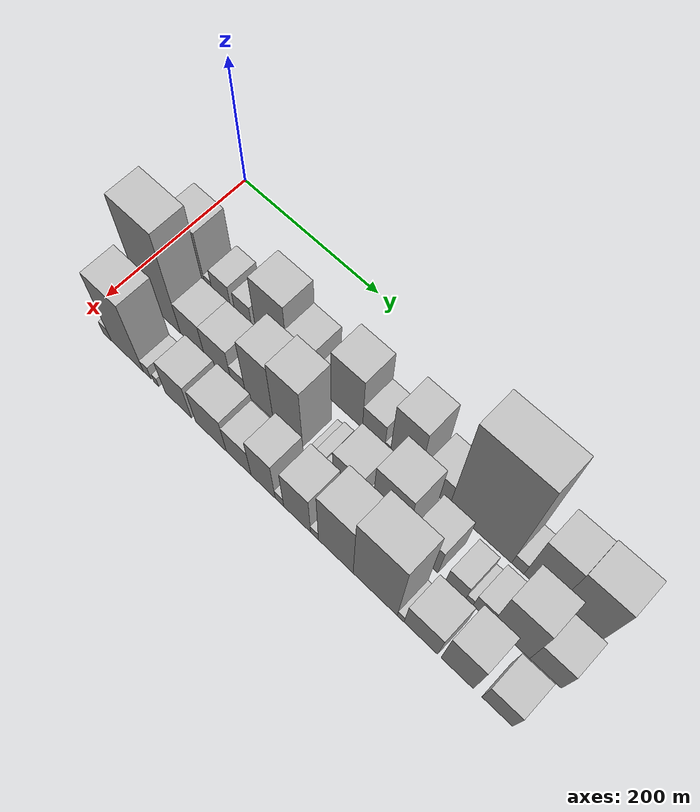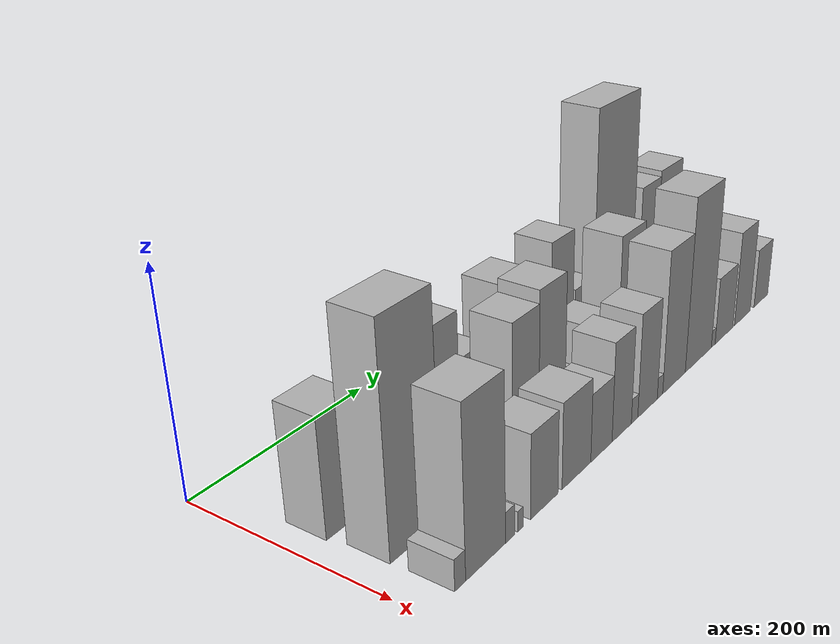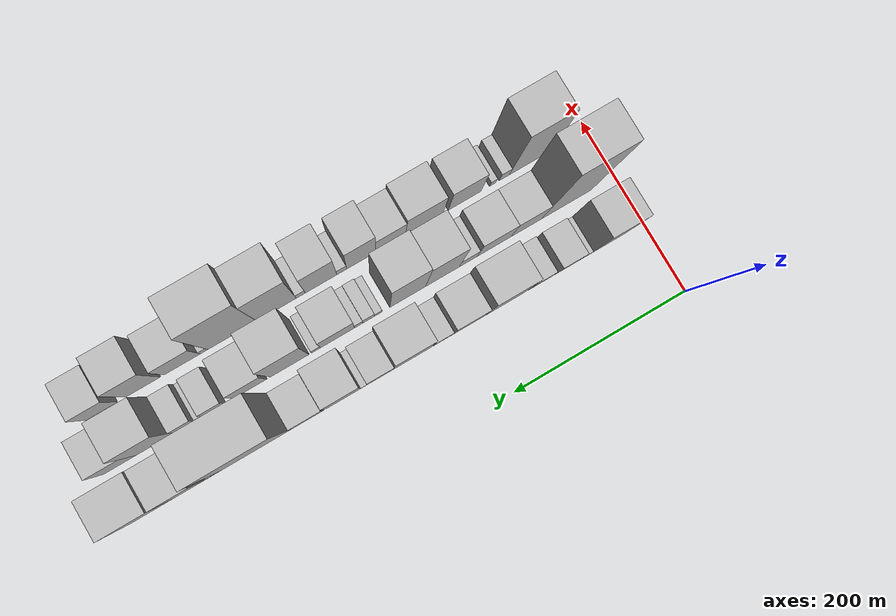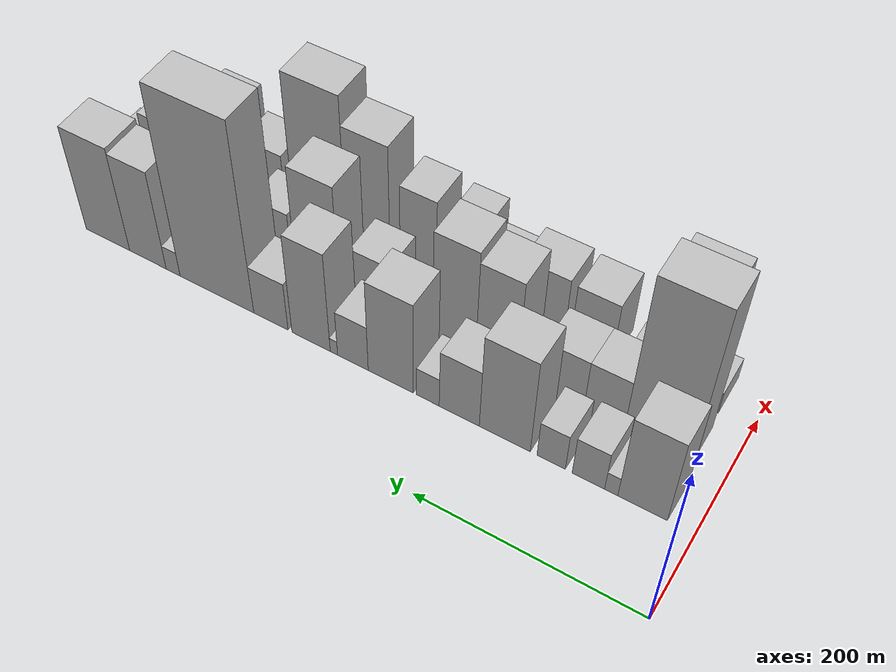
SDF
<sdf version="1.6">
 <world name="default">
  <model name="building_21">
   <static>1</static>
   <pose>100.0000 44.0193 0 0.000000 0.000000 0.000000</pose>
   <link name="link">
    <pose>0 0 52.50 0 0 0</pose>
    <collision name="collision"><geometry><box><size>40.0000 41.6909 105.0000</size></box></geometry></collision>
    <visual name="visual">
     <cast_shadows>0</cast_shadows>
     <geometry><box><size>40.0000 41.6909 105.0000</size></box></geometry>
     <material>
      <script>
       <uri>model://HANNAS_wall/materials/scripts</uri>
       <uri>model://HANNAS_wall/materials/textures</uri>
       <name>vrc/HANNAS_wall</name>
      </script>
     </material>
    </visual>
   </link>
  </model>
  <model name="building_22">
   <static>1</static>
   <pose>100.0000 70.4812 0 0.000000 0.000000 0.000000</pose>
   <link name="link">
    <pose>0 0 12.00 0 0 0</pose>
    <collision name="collision"><geometry><box><size>40.0000 11.2330 24.0000</size></box></geometry></collision>
    <visual name="visual">
     <cast_shadows>0</cast_shadows>
     <geometry><box><size>40.0000 11.2330 24.0000</size></box></geometry>
     <material>
      <script>
       <uri>model://HANNAS_wall/materials/scripts</uri>
       <uri>model://HANNAS_wall/materials/textures</uri>
       <name>vrc/HANNAS_wall</name>
      </script>
     </material>
    </visual>
   </link>
  </model>
  <model name="building_23">
   <static>1</static>
   <pose>100.0000 90.1137 0 0.000000 0.000000 0.000000</pose>
   <link name="link">
    <pose>0 0 24.00 0 0 0</pose>
    <collision name="collision"><geometry><box><size>40.0000 28.0321 48.0000</size></box></geometry></collision>
    <visual name="visual">
     <cast_shadows>0</cast_shadows>
     <geometry><box><size>40.0000 28.0321 48.0000</size></box></geometry>
     <material>
      <script>
       <uri>model://HANNAS_wall/materials/scripts</uri>
       <uri>model://HANNAS_wall/materials/textures</uri>
       <name>vrc/HANNAS_wall</name>
      </script>
     </material>
    </visual>
   </link>
  </model>
  <model name="building_24">
   <static>1</static>
   <pose>100.0000 122.5841 0 0.000000 0.000000 0.000000</pose>
   <link name="link">
    <pose>0 0 22.50 0 0 0</pose>
    <collision name="collision"><geometry><box><size>40.0000 24.9087 45.0000</size></box></geometry></collision>
    <visual name="visual">
     <cast_shadows>0</cast_shadows>
     <geometry><box><size>40.0000 24.9087 45.0000</size></box></geometry>
     <material>
      <script>
       <uri>model://HANNAS_wall/materials/scripts</uri>
       <uri>model://HANNAS_wall/materials/textures</uri>
       <name>vrc/HANNAS_wall</name>
      </script>
     </material>
    </visual>
   </link>
  </model>
  <model name="building_25">
   <static>1</static>
   <pose>100.0000 164.0409 0 0.000000 0.000000 0.000000</pose>
   <link name="link">
    <pose>0 0 58.50 0 0 0</pose>
    <collision name="collision"><geometry><box><size>40.0000 46.0048 117.0000</size></box></geometry></collision>
    <visual name="visual">
     <cast_shadows>0</cast_shadows>
     <geometry><box><size>40.0000 46.0048 117.0000</size></box></geometry>
     <material>
      <script>
       <uri>model://HANNAS_wall/materials/scripts</uri>
       <uri>model://HANNAS_wall/materials/textures</uri>
       <name>vrc/HANNAS_wall</name>
      </script>
     </material>
    </visual>
   </link>
  </model>
  <model name="building_26">
   <static>1</static>
   <pose>100.0000 205.5734 0 0.000000 0.000000 0.000000</pose>
   <link name="link">
    <pose>0 0 36.00 0 0 0</pose>
    <collision name="collision"><geometry><box><size>40.0000 37.0601 72.0000</size></box></geometry></collision>
    <visual name="visual">
     <cast_shadows>0</cast_shadows>
     <geometry><box><size>40.0000 37.0601 72.0000</size></box></geometry>
     <material>
      <script>
       <uri>model://HANNAS_wall/materials/scripts</uri>
       <uri>model://HANNAS_wall/materials/textures</uri>
       <name>vrc/HANNAS_wall</name>
      </script>
     </material>
    </visual>
   </link>
  </model>
  <model name="building_27">
   <static>1</static>
   <pose>100.0000 234.7324 0 0.000000 0.000000 0.000000</pose>
   <link name="link">
    <pose>0 0 18.00 0 0 0</pose>
    <collision name="collision"><geometry><box><size>40.0000 21.2580 36.0000</size></box></geometry></collision>
    <visual name="visual">
     <cast_shadows>0</cast_shadows>
     <geometry><box><size>40.0000 21.2580 36.0000</size></box></geometry>
     <material>
      <script>
       <uri>model://HANNAS_wall/materials/scripts</uri>
       <uri>model://HANNAS_wall/materials/textures</uri>
       <name>vrc/HANNAS_wall</name>
      </script>
     </material>
    </visual>
   </link>
  </model>
  <model name="building_28">
   <static>1</static>
   <pose>100.0000 269.9619 0 0.000000 0.000000 0.000000</pose>
   <link name="link">
    <pose>0 0 57.00 0 0 0</pose>
    <collision name="collision"><geometry><box><size>40.0000 43.2010 114.0000</size></box></geometry></collision>
    <visual name="visual">
     <cast_shadows>0</cast_shadows>
     <geometry><box><size>40.0000 43.2010 114.0000</size></box></geometry>
     <material>
      <script>
       <uri>model://HANNAS_wall/materials/scripts</uri>
       <uri>model://HANNAS_wall/materials/textures</uri>
       <name>vrc/HANNAS_wall</name>
      </script>
     </material>
    </visual>
   </link>
  </model>
  <model name="building_29">
   <static>1</static>
   <pose>100.0000 306.5594 0 0.000000 0.000000 0.000000</pose>
   <link name="link">
    <pose>0 0 28.50 0 0 0</pose>
    <collision name="collision"><geometry><box><size>40.0000 29.9941 57.0000</size></box></geometry></collision>
    <visual name="visual">
     <cast_shadows>0</cast_shadows>
     <geometry><box><size>40.0000 29.9941 57.0000</size></box></geometry>
     <material>
      <script>
       <uri>model://HANNAS_wall/materials/scripts</uri>
       <uri>model://HANNAS_wall/materials/textures</uri>
       <name>vrc/HANNAS_wall</name>
      </script>
     </material>
    </visual>
   </link>
  </model>
  <model name="building_30">
   <static>1</static>
   <pose>100.0000 325.1949 0 0.000000 0.000000 0.000000</pose>
   <link name="link">
    <pose>0 0 9.00 0 0 0</pose>
    <collision name="collision"><geometry><box><size>40.0000 7.2768 18.0000</size></box></geometry></collision>
    <visual name="visual">
     <cast_shadows>0</cast_shadows>
     <geometry><box><size>40.0000 7.2768 18.0000</size></box></geometry>
     <material>
      <script>
       <uri>model://HANNAS_wall/materials/scripts</uri>
       <uri>model://HANNAS_wall/materials/textures</uri>
       <name>vrc/HANNAS_wall</name>
      </script>
     </material>
    </visual>
   </link>
  </model>
  <model name="building_31">
   <static>1</static>
   <pose>100.0000 347.9700 0 0.000000 0.000000 0.000000</pose>
   <link name="link">
    <pose>0 0 61.50 0 0 0</pose>
    <collision name="collision"><geometry><box><size>40.0000 38.2735 123.0000</size></box></geometry></collision>
    <visual name="visual">
     <cast_shadows>0</cast_shadows>
     <geometry><box><size>40.0000 38.2735 123.0000</size></box></geometry>
     <material>
      <script>
       <uri>model://HANNAS_wall/materials/scripts</uri>
       <uri>model://HANNAS_wall/materials/textures</uri>
       <name>vrc/HANNAS_wall</name>
      </script>
     </material>
    </visual>
   </link>
  </model>
  <model name="building_32">
   <static>1</static>
   <pose>100.0000 388.5789 0 0.000000 0.000000 0.000000</pose>
   <link name="link">
    <pose>0 0 30.00 0 0 0</pose>
    <collision name="collision"><geometry><box><size>40.0000 34.9442 60.0000</size></box></geometry></collision>
    <visual name="visual">
     <cast_shadows>0</cast_shadows>
     <geometry><box><size>40.0000 34.9442 60.0000</size></box></geometry>
     <material>
      <script>
       <uri>model://HANNAS_wall/materials/scripts</uri>
       <uri>model://HANNAS_wall/materials/textures</uri>
       <name>vrc/HANNAS_wall</name>
      </script>
     </material>
    </visual>
   </link>
  </model>
  <model name="building_33">
   <static>1</static>
   <pose>100.0000 444.9946 0 0.000000 0.000000 0.000000</pose>
   <link name="link">
    <pose>0 0 112.50 0 0 0</pose>
    <collision name="collision"><geometry><box><size>40.0000 77.8872 225.0000</size></box></geometry></collision>
    <visual name="visual">
     <cast_shadows>0</cast_shadows>
     <geometry><box><size>40.0000 77.8872 225.0000</size></box></geometry>
     <material>
      <script>
       <uri>model://HANNAS_wall/materials/scripts</uri>
       <uri>model://HANNAS_wall/materials/textures</uri>
       <name>vrc/HANNAS_wall</name>
      </script>
     </material>
    </visual>
   </link>
  </model>
  <model name="building_34">
   <static>1</static>
   <pose>100.0000 491.4646 0 0.000000 0.000000 0.000000</pose>
   <link name="link">
    <pose>0 0 15.00 0 0 0</pose>
    <collision name="collision"><geometry><box><size>40.0000 15.0528 30.0000</size></box></geometry></collision>
    <visual name="visual">
     <cast_shadows>0</cast_shadows>
     <geometry><box><size>40.0000 15.0528 30.0000</size></box></geometry>
     <material>
      <script>
       <uri>model://HANNAS_wall/materials/scripts</uri>
       <uri>model://HANNAS_wall/materials/textures</uri>
       <name>vrc/HANNAS_wall</name>
      </script>
     </material>
    </visual>
   </link>
  </model>
  <model name="building_35">
   <static>1</static>
   <pose>100.0000 518.9559 0 0.000000 0.000000 0.000000</pose>
   <link name="link">
    <pose>0 0 60.00 0 0 0</pose>
    <collision name="collision"><geometry><box><size>40.0000 39.9298 120.0000</size></box></geometry></collision>
    <visual name="visual">
     <cast_shadows>0</cast_shadows>
     <geometry><box><size>40.0000 39.9298 120.0000</size></box></geometry>
     <material>
      <script>
       <uri>model://HANNAS_wall/materials/scripts</uri>
       <uri>model://HANNAS_wall/materials/textures</uri>
       <name>vrc/HANNAS_wall</name>
      </script>
     </material>
    </visual>
   </link>
  </model>
  <model name="building_36">
   <static>1</static>
   <pose>100.0000 563.3498 0 0.000000 0.000000 0.000000</pose>
   <link name="link">
    <pose>0 0 63.00 0 0 0</pose>
    <collision name="collision"><geometry><box><size>40.0000 48.8581 126.0000</size></box></geometry></collision>
    <visual name="visual">
     <cast_shadows>0</cast_shadows>
     <geometry><box><size>40.0000 48.8581 126.0000</size></box></geometry>
     <material>
      <script>
       <uri>model://HANNAS_wall/materials/scripts</uri>
       <uri>model://HANNAS_wall/materials/textures</uri>
       <name>vrc/HANNAS_wall</name>
      </script>
     </material>
    </visual>
   </link>
  </model>
  <model name="building_50">
   <static>1</static>
   <pose>155.0000 57.4615 0 0.000000 0.000000 0.000000</pose>
   <link name="link">
    <pose>0 0 97.50 0 0 0</pose>
    <collision name="collision"><geometry><box><size>40.0000 58.5223 195.0000</size></box></geometry></collision>
    <visual name="visual">
     <cast_shadows>0</cast_shadows>
     <geometry><box><size>40.0000 58.5223 195.0000</size></box></geometry>
     <material>
      <script>
       <uri>model://HANNAS_wall/materials/scripts</uri>
       <uri>model://HANNAS_wall/materials/textures</uri>
       <name>vrc/HANNAS_wall</name>
      </script>
     </material>
    </visual>
   </link>
  </model>
  <model name="building_51">
   <static>1</static>
   <pose>155.0000 104.7259 0 0.000000 0.000000 0.000000</pose>
   <link name="link">
    <pose>0 0 33.00 0 0 0</pose>
    <collision name="collision"><geometry><box><size>40.0000 36.0065 66.0000</size></box></geometry></collision>
    <visual name="visual">
     <cast_shadows>0</cast_shadows>
     <geometry><box><size>40.0000 36.0065 66.0000</size></box></geometry>
     <material>
      <script>
       <uri>model://HANNAS_wall/materials/scripts</uri>
       <uri>model://HANNAS_wall/materials/textures</uri>
       <name>vrc/HANNAS_wall</name>
      </script>
     </material>
    </visual>
   </link>
  </model>
  <model name="building_52">
   <static>1</static>
   <pose>155.0000 142.3442 0 0.000000 0.000000 0.000000</pose>
   <link name="link">
    <pose>0 0 33.00 0 0 0</pose>
    <collision name="collision"><geometry><box><size>40.0000 39.2301 66.0000</size></box></geometry></collision>
    <visual name="visual">
     <cast_shadows>0</cast_shadows>
     <geometry><box><size>40.0000 39.2301 66.0000</size></box></geometry>
     <material>
      <script>
       <uri>model://HANNAS_wall/materials/scripts</uri>
       <uri>model://HANNAS_wall/materials/textures</uri>
       <name>vrc/HANNAS_wall</name>
      </script>
     </material>
    </visual>
   </link>
  </model>
  <model name="building_53">
   <static>1</static>
   <pose>155.0000 172.5488 0 0.000000 0.000000 0.000000</pose>
   <link name="link">
    <pose>0 0 18.00 0 0 0</pose>
    <collision name="collision"><geometry><box><size>40.0000 21.1791 36.0000</size></box></geometry></collision>
    <visual name="visual">
     <cast_shadows>0</cast_shadows>
     <geometry><box><size>40.0000 21.1791 36.0000</size></box></geometry>
     <material>
      <script>
       <uri>model://HANNAS_wall/materials/scripts</uri>
       <uri>model://HANNAS_wall/materials/textures</uri>
       <name>vrc/HANNAS_wall</name>
      </script>
     </material>
    </visual>
   </link>
  </model>
  <model name="building_54">
   <static>1</static>
   <pose>155.0000 202.6950 0 0.000000 0.000000 0.000000</pose>
   <link name="link">
    <pose>0 0 61.50 0 0 0</pose>
    <collision name="collision"><geometry><box><size>40.0000 39.1133 123.0000</size></box></geometry></collision>
    <visual name="visual">
     <cast_shadows>0</cast_shadows>
     <geometry><box><size>40.0000 39.1133 123.0000</size></box></geometry>
     <material>
      <script>
       <uri>model://HANNAS_wall/materials/scripts</uri>
       <uri>model://HANNAS_wall/materials/textures</uri>
       <name>vrc/HANNAS_wall</name>
      </script>
     </material>
    </visual>
   </link>
  </model>
  <model name="building_55">
   <static>1</static>
   <pose>155.0000 242.8313 0 0.000000 0.000000 0.000000</pose>
   <link name="link">
    <pose>0 0 67.50 0 0 0</pose>
    <collision name="collision"><geometry><box><size>40.0000 41.1593 135.0000</size></box></geometry></collision>
    <visual name="visual">
     <cast_shadows>0</cast_shadows>
     <geometry><box><size>40.0000 41.1593 135.0000</size></box></geometry>
     <material>
      <script>
       <uri>model://HANNAS_wall/materials/scripts</uri>
       <uri>model://HANNAS_wall/materials/textures</uri>
       <name>vrc/HANNAS_wall</name>
      </script>
     </material>
    </visual>
   </link>
  </model>
  <model name="building_56">
   <static>1</static>
   <pose>155.0000 276.7451 0 0.000000 0.000000 0.000000</pose>
   <link name="link">
    <pose>0 0 9.00 0 0 0</pose>
    <collision name="collision"><geometry><box><size>40.0000 8.6683 18.0000</size></box></geometry></collision>
    <visual name="visual">
     <cast_shadows>0</cast_shadows>
     <geometry><box><size>40.0000 8.6683 18.0000</size></box></geometry>
     <material>
      <script>
       <uri>model://HANNAS_wall/materials/scripts</uri>
       <uri>model://HANNAS_wall/materials/textures</uri>
       <name>vrc/HANNAS_wall</name>
      </script>
     </material>
    </visual>
   </link>
  </model>
  <model name="building_57">
   <static>1</static>
   <pose>155.0000 287.7521 0 0.000000 0.000000 0.000000</pose>
   <link name="link">
    <pose>0 0 13.50 0 0 0</pose>
    <collision name="collision"><geometry><box><size>40.0000 13.3457 27.0000</size></box></geometry></collision>
    <visual name="visual">
     <cast_shadows>0</cast_shadows>
     <geometry><box><size>40.0000 13.3457 27.0000</size></box></geometry>
     <material>
      <script>
       <uri>model://HANNAS_wall/materials/scripts</uri>
       <uri>model://HANNAS_wall/materials/textures</uri>
       <name>vrc/HANNAS_wall</name>
      </script>
     </material>
    </visual>
   </link>
  </model>
  <model name="building_58">
   <static>1</static>
   <pose>155.0000 299.2584 0 0.000000 0.000000 0.000000</pose>
   <link name="link">
    <pose>0 0 12.00 0 0 0</pose>
    <collision name="collision"><geometry><box><size>40.0000 9.6668 24.0000</size></box></geometry></collision>
    <visual name="visual">
     <cast_shadows>0</cast_shadows>
     <geometry><box><size>40.0000 9.6668 24.0000</size></box></geometry>
     <material>
      <script>
       <uri>model://HANNAS_wall/materials/scripts</uri>
       <uri>model://HANNAS_wall/materials/textures</uri>
       <name>vrc/HANNAS_wall</name>
      </script>
     </material>
    </visual>
   </link>
  </model>
  <model name="building_59">
   <static>1</static>
   <pose>155.0000 323.4961 0 0.000000 0.000000 0.000000</pose>
   <link name="link">
    <pose>0 0 33.00 0 0 0</pose>
    <collision name="collision"><geometry><box><size>40.0000 38.8087 66.0000</size></box></geometry></collision>
    <visual name="visual">
     <cast_shadows>0</cast_shadows>
     <geometry><box><size>40.0000 38.8087 66.0000</size></box></geometry>
     <material>
      <script>
       <uri>model://HANNAS_wall/materials/scripts</uri>
       <uri>model://HANNAS_wall/materials/textures</uri>
       <name>vrc/HANNAS_wall</name>
      </script>
     </material>
    </visual>
   </link>
  </model>
  <model name="building_60">
   <static>1</static>
   <pose>155.0000 347.9734 0 0.000000 0.000000 0.000000</pose>
   <link name="link">
    <pose>0 0 10.50 0 0 0</pose>
    <collision name="collision"><geometry><box><size>40.0000 10.1459 21.0000</size></box></geometry></collision>
    <visual name="visual">
     <cast_shadows>0</cast_shadows>
     <geometry><box><size>40.0000 10.1459 21.0000</size></box></geometry>
     <material>
      <script>
       <uri>model://HANNAS_wall/materials/scripts</uri>
       <uri>model://HANNAS_wall/materials/textures</uri>
       <name>vrc/HANNAS_wall</name>
      </script>
     </material>
    </visual>
   </link>
  </model>
  <model name="building_61">
   <static>1</static>
   <pose>155.0000 378.1386 0 0.000000 0.000000 0.000000</pose>
   <link name="link">
    <pose>0 0 66.00 0 0 0</pose>
    <collision name="collision"><geometry><box><size>40.0000 44.1845 132.0000</size></box></geometry></collision>
    <visual name="visual">
     <cast_shadows>0</cast_shadows>
     <geometry><box><size>40.0000 44.1845 132.0000</size></box></geometry>
     <material>
      <script>
       <uri>model://HANNAS_wall/materials/scripts</uri>
       <uri>model://HANNAS_wall/materials/textures</uri>
       <name>vrc/HANNAS_wall</name>
      </script>
     </material>
    </visual>
   </link>
  </model>
  <model name="building_62">
   <static>1</static>
   <pose>155.0000 422.5611 0 0.000000 0.000000 0.000000</pose>
   <link name="link">
    <pose>0 0 36.00 0 0 0</pose>
    <collision name="collision"><geometry><box><size>40.0000 36.6606 72.0000</size></box></geometry></collision>
    <visual name="visual">
     <cast_shadows>0</cast_shadows>
     <geometry><box><size>40.0000 36.6606 72.0000</size></box></geometry>
     <material>
      <script>
       <uri>model://HANNAS_wall/materials/scripts</uri>
       <uri>model://HANNAS_wall/materials/textures</uri>
       <name>vrc/HANNAS_wall</name>
      </script>
     </material>
    </visual>
   </link>
  </model>
  <model name="building_63">
   <static>1</static>
   <pose>155.0000 463.1494 0 0.000000 0.000000 0.000000</pose>
   <link name="link">
    <pose>0 0 21.00 0 0 0</pose>
    <collision name="collision"><geometry><box><size>40.0000 24.5159 42.0000</size></box></geometry></collision>
    <visual name="visual">
     <cast_shadows>0</cast_shadows>
     <geometry><box><size>40.0000 24.5159 42.0000</size></box></geometry>
     <material>
      <script>
       <uri>model://HANNAS_wall/materials/scripts</uri>
       <uri>model://HANNAS_wall/materials/textures</uri>
       <name>vrc/HANNAS_wall</name>
      </script>
     </material>
    </visual>
   </link>
  </model>
  <model name="building_64">
   <static>1</static>
   <pose>155.0000 479.7897 0 0.000000 0.000000 0.000000</pose>
   <link name="link">
    <pose>0 0 9.00 0 0 0</pose>
    <collision name="collision"><geometry><box><size>40.0000 8.7647 18.0000</size></box></geometry></collision>
    <visual name="visual">
     <cast_shadows>0</cast_shadows>
     <geometry><box><size>40.0000 8.7647 18.0000</size></box></geometry>
     <material>
      <script>
       <uri>model://HANNAS_wall/materials/scripts</uri>
       <uri>model://HANNAS_wall/materials/textures</uri>
       <name>vrc/HANNAS_wall</name>
      </script>
     </material>
    </visual>
   </link>
  </model>
  <model name="building_65">
   <static>1</static>
   <pose>155.0000 495.7637 0 0.000000 0.000000 0.000000</pose>
   <link name="link">
    <pose>0 0 21.00 0 0 0</pose>
    <collision name="collision"><geometry><box><size>40.0000 23.1834 42.0000</size></box></geometry></collision>
    <visual name="visual">
     <cast_shadows>0</cast_shadows>
     <geometry><box><size>40.0000 23.1834 42.0000</size></box></geometry>
     <material>
      <script>
       <uri>model://HANNAS_wall/materials/scripts</uri>
       <uri>model://HANNAS_wall/materials/textures</uri>
       <name>vrc/HANNAS_wall</name>
      </script>
     </material>
    </visual>
   </link>
  </model>
  <model name="building_66">
   <static>1</static>
   <pose>155.0000 529.7423 0 0.000000 0.000000 0.000000</pose>
   <link name="link">
    <pose>0 0 57.00 0 0 0</pose>
    <collision name="collision"><geometry><box><size>40.0000 44.7738 114.0000</size></box></geometry></collision>
    <visual name="visual">
     <cast_shadows>0</cast_shadows>
     <geometry><box><size>40.0000 44.7738 114.0000</size></box></geometry>
     <material>
      <script>
       <uri>model://HANNAS_wall/materials/scripts</uri>
       <uri>model://HANNAS_wall/materials/textures</uri>
       <name>vrc/HANNAS_wall</name>
      </script>
     </material>
    </visual>
   </link>
  </model>
  <model name="building_67">
   <static>1</static>
   <pose>155.0000 570.4835 0 0.000000 0.000000 0.000000</pose>
   <link name="link">
    <pose>0 0 34.50 0 0 0</pose>
    <collision name="collision"><geometry><box><size>40.0000 36.7087 69.0000</size></box></geometry></collision>
    <visual name="visual">
     <cast_shadows>0</cast_shadows>
     <geometry><box><size>40.0000 36.7087 69.0000</size></box></geometry>
     <material>
      <script>
       <uri>model://HANNAS_wall/materials/scripts</uri>
       <uri>model://HANNAS_wall/materials/textures</uri>
       <name>vrc/HANNAS_wall</name>
      </script>
     </material>
    </visual>
   </link>
  </model>
  <model name="building_85">
   <static>1</static>
   <pose>210.0000 36.2346 0 0.000000 0.000000 0.000000</pose>
   <link name="link">
    <pose>0 0 13.50 0 0 0</pose>
    <collision name="collision"><geometry><box><size>40.0000 12.7011 27.0000</size></box></geometry></collision>
    <visual name="visual">
     <cast_shadows>0</cast_shadows>
     <geometry><box><size>40.0000 12.7011 27.0000</size></box></geometry>
     <material>
      <script>
       <uri>model://HANNAS_wall/materials/scripts</uri>
       <uri>model://HANNAS_wall/materials/textures</uri>
       <name>vrc/HANNAS_wall</name>
      </script>
     </material>
    </visual>
   </link>
  </model>
  <model name="building_86">
   <static>1</static>
   <pose>210.0000 67.0611 0 0.000000 0.000000 0.000000</pose>
   <link name="link">
    <pose>0 0 72.00 0 0 0</pose>
    <collision name="collision"><geometry><box><size>40.0000 48.9519 144.0000</size></box></geometry></collision>
    <visual name="visual">
     <cast_shadows>0</cast_shadows>
     <geometry><box><size>40.0000 48.9519 144.0000</size></box></geometry>
     <material>
      <script>
       <uri>model://HANNAS_wall/materials/scripts</uri>
       <uri>model://HANNAS_wall/materials/textures</uri>
       <name>vrc/HANNAS_wall</name>
      </script>
     </material>
    </visual>
   </link>
  </model>
  <model name="building_87">
   <static>1</static>
   <pose>210.0000 97.4123 0 0.000000 0.000000 0.000000</pose>
   <link name="link">
    <pose>0 0 13.50 0 0 0</pose>
    <collision name="collision"><geometry><box><size>40.0000 11.7505 27.0000</size></box></geometry></collision>
    <visual name="visual">
     <cast_shadows>0</cast_shadows>
     <geometry><box><size>40.0000 11.7505 27.0000</size></box></geometry>
     <material>
      <script>
       <uri>model://HANNAS_wall/materials/scripts</uri>
       <uri>model://HANNAS_wall/materials/textures</uri>
       <name>vrc/HANNAS_wall</name>
      </script>
     </material>
    </visual>
   </link>
  </model>
  <model name="building_88">
   <static>1</static>
   <pose>210.0000 111.0005 0 0.000000 0.000000 0.000000</pose>
   <link name="link">
    <pose>0 0 9.00 0 0 0</pose>
    <collision name="collision"><geometry><box><size>40.0000 7.4258 18.0000</size></box></geometry></collision>
    <visual name="visual">
     <cast_shadows>0</cast_shadows>
     <geometry><box><size>40.0000 7.4258 18.0000</size></box></geometry>
     <material>
      <script>
       <uri>model://HANNAS_wall/materials/scripts</uri>
       <uri>model://HANNAS_wall/materials/textures</uri>
       <name>vrc/HANNAS_wall</name>
      </script>
     </material>
    </visual>
   </link>
  </model>
  <model name="building_89">
   <static>1</static>
   <pose>210.0000 143.9252 0 0.000000 0.000000 0.000000</pose>
   <link name="link">
    <pose>0 0 37.50 0 0 0</pose>
    <collision name="collision"><geometry><box><size>40.0000 38.4236 75.0000</size></box></geometry></collision>
    <visual name="visual">
     <cast_shadows>0</cast_shadows>
     <geometry><box><size>40.0000 38.4236 75.0000</size></box></geometry>
     <material>
      <script>
       <uri>model://HANNAS_wall/materials/scripts</uri>
       <uri>model://HANNAS_wall/materials/textures</uri>
       <name>vrc/HANNAS_wall</name>
      </script>
     </material>
    </visual>
   </link>
  </model>
  <model name="building_90">
   <static>1</static>
   <pose>210.0000 191.1306 0 0.000000 0.000000 0.000000</pose>
   <link name="link">
    <pose>0 0 39.00 0 0 0</pose>
    <collision name="collision"><geometry><box><size>40.0000 43.9871 78.0000</size></box></geometry></collision>
    <visual name="visual">
     <cast_shadows>0</cast_shadows>
     <geometry><box><size>40.0000 43.9871 78.0000</size></box></geometry>
     <material>
      <script>
       <uri>model://HANNAS_wall/materials/scripts</uri>
       <uri>model://HANNAS_wall/materials/textures</uri>
       <name>vrc/HANNAS_wall</name>
      </script>
     </material>
    </visual>
   </link>
  </model>
  <model name="building_91">
   <static>1</static>
   <pose>210.0000 230.4710 0 0.000000 0.000000 0.000000</pose>
   <link name="link">
    <pose>0 0 31.50 0 0 0</pose>
    <collision name="collision"><geometry><box><size>40.0000 34.6938 63.0000</size></box></geometry></collision>
    <visual name="visual">
     <cast_shadows>0</cast_shadows>
     <geometry><box><size>40.0000 34.6938 63.0000</size></box></geometry>
     <material>
      <script>
       <uri>model://HANNAS_wall/materials/scripts</uri>
       <uri>model://HANNAS_wall/materials/textures</uri>
       <name>vrc/HANNAS_wall</name>
      </script>
     </material>
    </visual>
   </link>
  </model>
  <model name="building_92">
   <static>1</static>
   <pose>210.0000 264.4849 0 0.000000 0.000000 0.000000</pose>
   <link name="link">
    <pose>0 0 46.50 0 0 0</pose>
    <collision name="collision"><geometry><box><size>40.0000 33.3339 93.0000</size></box></geometry></collision>
    <visual name="visual">
     <cast_shadows>0</cast_shadows>
     <geometry><box><size>40.0000 33.3339 93.0000</size></box></geometry>
     <material>
      <script>
       <uri>model://HANNAS_wall/materials/scripts</uri>
       <uri>model://HANNAS_wall/materials/textures</uri>
       <name>vrc/HANNAS_wall</name>
      </script>
     </material>
    </visual>
   </link>
  </model>
  <model name="building_93">
   <static>1</static>
   <pose>210.0000 286.9102 0 0.000000 0.000000 0.000000</pose>
   <link name="link">
    <pose>0 0 12.00 0 0 0</pose>
    <collision name="collision"><geometry><box><size>40.0000 11.5167 24.0000</size></box></geometry></collision>
    <visual name="visual">
     <cast_shadows>0</cast_shadows>
     <geometry><box><size>40.0000 11.5167 24.0000</size></box></geometry>
     <material>
      <script>
       <uri>model://HANNAS_wall/materials/scripts</uri>
       <uri>model://HANNAS_wall/materials/textures</uri>
       <name>vrc/HANNAS_wall</name>
      </script>
     </material>
    </visual>
   </link>
  </model>
  <model name="building_94">
   <static>1</static>
   <pose>210.0000 310.7083 0 0.000000 0.000000 0.000000</pose>
   <link name="link">
    <pose>0 0 49.50 0 0 0</pose>
    <collision name="collision"><geometry><box><size>40.0000 36.0796 99.0000</size></box></geometry></collision>
    <visual name="visual">
     <cast_shadows>0</cast_shadows>
     <geometry><box><size>40.0000 36.0796 99.0000</size></box></geometry>
     <material>
      <script>
       <uri>model://HANNAS_wall/materials/scripts</uri>
       <uri>model://HANNAS_wall/materials/textures</uri>
       <name>vrc/HANNAS_wall</name>
      </script>
     </material>
    </visual>
   </link>
  </model>
  <model name="building_95">
   <static>1</static>
   <pose>210.0000 333.9486 0 0.000000 0.000000 0.000000</pose>
   <link name="link">
    <pose>0 0 10.50 0 0 0</pose>
    <collision name="collision"><geometry><box><size>40.0000 10.4009 21.0000</size></box></geometry></collision>
    <visual name="visual">
     <cast_shadows>0</cast_shadows>
     <geometry><box><size>40.0000 10.4009 21.0000</size></box></geometry>
     <material>
      <script>
       <uri>model://HANNAS_wall/materials/scripts</uri>
       <uri>model://HANNAS_wall/materials/textures</uri>
       <name>vrc/HANNAS_wall</name>
      </script>
     </material>
    </visual>
   </link>
  </model>
  <model name="building_96">
   <static>1</static>
   <pose>210.0000 361.7699 0 0.000000 0.000000 0.000000</pose>
   <link name="link">
    <pose>0 0 69.00 0 0 0</pose>
    <collision name="collision"><geometry><box><size>40.0000 45.2417 138.0000</size></box></geometry></collision>
    <visual name="visual">
     <cast_shadows>0</cast_shadows>
     <geometry><box><size>40.0000 45.2417 138.0000</size></box></geometry>
     <material>
      <script>
       <uri>model://HANNAS_wall/materials/scripts</uri>
       <uri>model://HANNAS_wall/materials/textures</uri>
       <name>vrc/HANNAS_wall</name>
      </script>
     </material>
    </visual>
   </link>
  </model>
  <model name="building_97">
   <static>1</static>
   <pose>210.0000 412.3949 0 0.000000 0.000000 0.000000</pose>
   <link name="link">
    <pose>0 0 85.50 0 0 0</pose>
    <collision name="collision"><geometry><box><size>40.0000 56.0083 171.0000</size></box></geometry></collision>
    <visual name="visual">
     <cast_shadows>0</cast_shadows>
     <geometry><box><size>40.0000 56.0083 171.0000</size></box></geometry>
     <material>
      <script>
       <uri>model://HANNAS_wall/materials/scripts</uri>
       <uri>model://HANNAS_wall/materials/textures</uri>
       <name>vrc/HANNAS_wall</name>
      </script>
     </material>
    </visual>
   </link>
  </model>
  <model name="building_98">
   <static>1</static>
   <pose>210.0000 444.6533 0 0.000000 0.000000 0.000000</pose>
   <link name="link">
    <pose>0 0 9.00 0 0 0</pose>
    <collision name="collision"><geometry><box><size>40.0000 8.5086 18.0000</size></box></geometry></collision>
    <visual name="visual">
     <cast_shadows>0</cast_shadows>
     <geometry><box><size>40.0000 8.5086 18.0000</size></box></geometry>
     <material>
      <script>
       <uri>model://HANNAS_wall/materials/scripts</uri>
       <uri>model://HANNAS_wall/materials/textures</uri>
       <name>vrc/HANNAS_wall</name>
      </script>
     </material>
    </visual>
   </link>
  </model>
  <model name="building_99">
   <static>1</static>
   <pose>210.0000 469.5176 0 0.000000 0.000000 0.000000</pose>
   <link name="link">
    <pose>0 0 34.50 0 0 0</pose>
    <collision name="collision"><geometry><box><size>40.0000 41.2199 69.0000</size></box></geometry></collision>
    <visual name="visual">
     <cast_shadows>0</cast_shadows>
     <geometry><box><size>40.0000 41.2199 69.0000</size></box></geometry>
     <material>
      <script>
       <uri>model://HANNAS_wall/materials/scripts</uri>
       <uri>model://HANNAS_wall/materials/textures</uri>
       <name>vrc/HANNAS_wall</name>
      </script>
     </material>
    </visual>
   </link>
  </model>
  <model name="building_100">
   <static>1</static>
   <pose>210.0000 513.4804 0 0.000000 0.000000 0.000000</pose>
   <link name="link">
    <pose>0 0 49.50 0 0 0</pose>
    <collision name="collision"><geometry><box><size>40.0000 38.7057 99.0000</size></box></geometry></collision>
    <visual name="visual">
     <cast_shadows>0</cast_shadows>
     <geometry><box><size>40.0000 38.7057 99.0000</size></box></geometry>
     <material>
      <script>
       <uri>model://HANNAS_wall/materials/scripts</uri>
       <uri>model://HANNAS_wall/materials/textures</uri>
       <name>vrc/HANNAS_wall</name>
      </script>
     </material>
    </visual>
   </link>
  </model>
  <model name="building_101">
   <static>1</static>
   <pose>210.0000 560.7062 0 0.000000 0.000000 0.000000</pose>
   <link name="link">
    <pose>0 0 31.50 0 0 0</pose>
    <collision name="collision"><geometry><box><size>40.0000 35.7460 63.0000</size></box></geometry></collision>
    <visual name="visual">
     <cast_shadows>0</cast_shadows>
     <geometry><box><size>40.0000 35.7460 63.0000</size></box></geometry>
     <material>
      <script>
       <uri>model://HANNAS_wall/materials/scripts</uri>
       <uri>model://HANNAS_wall/materials/textures</uri>
       <name>vrc/HANNAS_wall</name>
      </script>
     </material>
    </visual>
   </link>
  </model>
 </world>
</sdf>
